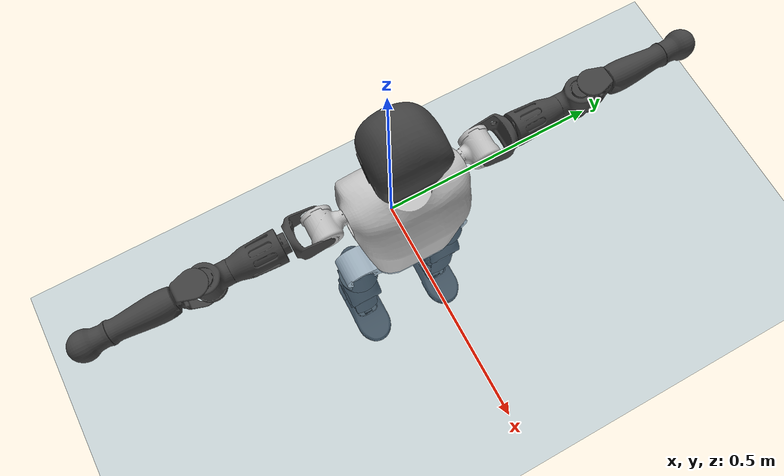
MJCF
<mujoco model="T1">
  <compiler angle="radian" assetdir="assets" balanceinertia="true" inertiafromgeom="false"/>

  <option timestep="0.005" density="1.2" viscosity="2e-05"/>

  <size nkey="1"/>

  <visual>
    <quality shadowsize="8192"/>
    <map shadowclip="0.5"/>
  </visual>

  <default>
    <default class="/">
      <joint armature="0.01" damping="0.01" frictionloss="0.1"/>
      <geom contype="0" conaffinity="0" group="1" solref="-1000 -80"/>
      <site size="0.01 0.005 0.005" group="5"/>
      <general forcelimited="true" biastype="affine" gainprm="25" biasprm="0 -25 -0.6"/>
      <default class="t1">
        <geom rgba="0.25 0.25 0.25 1"/>
        <default class="visual">
          <geom type="mesh" group="2"/>
        </default>
        <default class="collision">
          <geom group="3"/>
        </default>
        <default class="foot">
          <geom size="0.1115 0.05 0.015" type="box" condim="6" group="4" priority="1" solimp="0.015 1 0.015"/>
        </default>
        <default class="reward_collision_sphere">
          <geom group="5" rgba="1 0 0 1"/>
        </default>
      </default>
    </default>
  </default>

  <asset>
    <texture type="skybox" colorspace="auto" name="//unnamed_texture_0" builtin="gradient" rgb1="0.95 0.95 0.95" rgb2="0.95 0.95 0.95" width="100" height="600"/>
    <texture type="2d" colorspace="auto" name="texplane" builtin="checker" rgb1="0.345 0.575 0.748" rgb2="0.345 0.575 0.748" markrgb="1 1 1" width="512" height="512"/>
    <material name="MatPlane" class="/" texture="texplane" texuniform="true" texrepeat="2 2" specular="0.9"/>
    <mesh name="Trunk" class="/" file="Trunk.stl"/>
    <mesh name="H1" class="/" file="H1.stl"/>
    <mesh name="H2" class="/" file="H2.stl"/>
    <mesh name="AL1" class="/" file="AL1.stl"/>
    <mesh name="AL2" class="/" file="AL2.stl"/>
    <mesh name="AL3" class="/" file="AL3.stl"/>
    <mesh name="left_hand_link" class="/" file="left_hand_link.stl"/>
    <mesh name="AR1" class="/" file="AR1.stl"/>
    <mesh name="AR2" class="/" file="AR2.stl"/>
    <mesh name="AR3" class="/" file="AR3.stl"/>
    <mesh name="right_hand_link" class="/" file="right_hand_link.stl"/>
    <mesh name="Waist" class="/" file="Waist.stl"/>
    <mesh name="Hip_Pitch_Left" class="/" file="Hip_Pitch_Left.stl"/>
    <mesh name="Hip_Roll_Left" class="/" file="Hip_Roll_Left.stl"/>
    <mesh name="Hip_Yaw_Left" class="/" file="Hip_Yaw_Left.stl"/>
    <mesh name="Shank_Left" class="/" file="Shank_Left.stl"/>
    <mesh name="Ankle_Cross_Left" class="/" file="Ankle_Cross_Left.stl"/>
    <mesh name="left_foot_link" class="/" file="left_foot_link.stl"/>
    <mesh name="Hip_Pitch_Right" class="/" file="Hip_Pitch_Right.stl"/>
    <mesh name="Hip_Roll_Right" class="/" file="Hip_Roll_Right.stl"/>
    <mesh name="Hip_Yaw_Right" class="/" file="Hip_Yaw_Right.stl"/>
    <mesh name="Shank_Right" class="/" file="Shank_Right.stl"/>
    <mesh name="Ankle_Cross_Right" class="/" file="Ankle_Cross_Right.stl"/>
    <mesh name="right_foot_link" class="/" file="right_foot_link.stl"/>
  </asset>

  <worldbody>
    <geom name="floor" class="/" size="100 100 0.125" type="plane" group="0" material="MatPlane"/>
    <light name="toplight_shadow" class="/" pos="0 0 5" dir="0.0990148 0.0990148 -0.990148" type="directional" ambient="0.04 0.04 0.04" diffuse="0.55 0.55 0.55" specular="0.12 0.12 0.12"/>
    <light name="toplight_fill" class="/" pos="0 0 5" dir="0.0990148 0.0990148 -0.990148" type="directional" castshadow="false" ambient="0.04 0.04 0.04" diffuse="0.3 0.3 0.3" specular="0.08 0.08 0.08"/>
    <body name="trunk" childclass="t1" pos="-0.00123321 0.00239723 0.000237588" quat="1 3.07242e-06 1.71267e-05 -7.83546e-05">
      <inertial pos="0.0391588 -0.00233938 0.106744" quat="0.999986 -0.00206782 0.00208239 0.00441663" mass="11.0132" diaginertia="0.0187407 0.146203 0.0590416"/>
      <joint name="//unnamed_joint_0" type="free" armature="0" damping="0" frictionloss="0"/>
      <geom name="//unnamed_geom_1" class="visual" rgba="0.76 0.76 0.76 1" mesh="Trunk"/>
      <geom name="//unnamed_geom_2" class="collision" size="0.0720029 0.0960039 0.144006" pos="0.043601 0 0.120779" type="box"/>
      <geom name="//unnamed_geom_3" class="reward_collision_sphere" size="0.110404" pos="0.043601 0 0.100649"/>
      <geom name="//unnamed_geom_4" class="reward_collision_sphere" size="0.0144006" pos="0.043601 0.0974901 0"/>
      <geom name="//unnamed_geom_5" class="reward_collision_sphere" size="0.0144006" pos="0.043601 -0.0974901 0"/>
      <geom name="//unnamed_geom_6" class="reward_collision_sphere" size="0.0144006" pos="0.043601 0.122723 0.181168"/>
      <geom name="//unnamed_geom_7" class="reward_collision_sphere" size="0.0144006" pos="0.043601 -0.122723 0.181168"/>
      <site name="imu" pos="0.00317222 0.018581 0.00504675" size="0.00960039"/>
      <camera name="track" pos="0 -2.29388 0" quat="0.707107 0.707107 0 0" mode="trackcom"/>
      <camera name="ego_camera" pos="0.0886555 0 0.422726" quat="-0.5 -0.5 0.5 0.5"/>
      <body name="H1" pos="0.0430584 -0.00293058 0.241868" quat="1 -5.03016e-05 -0.00011664 -3.65329e-05">
        <inertial pos="-0.000434375 -0.000943387 0.057486" quat="0.747208 0.000532652 -0.00399233 0.664578" mass="0.396415" diaginertia="5.1942e-05 0.000449639 0.000159858"/>
        <joint name="AAHead_yaw" pos="0 0 0" axis="0.000333982 0.0191672 0.999816" range="-1.55375 1.62149" armature="0.00956331" damping="0.0137088" frictionloss="0.102377"/>
        <geom name="//unnamed_geom_8" class="visual" mesh="H1"/>
        <body name="H2" pos="-0.00324351 -0.00273957 0.0599809" quat="0.999999 -0.000767683 0.000122373 0.000795075">
          <inertial pos="0.00634033 0.00622717 0.0999463" quat="0.988209 0.111828 -0.07907 -0.0684563" mass="0.574609" diaginertia="0.000430137 0.0042087 0.00182594"/>
          <joint name="Head_pitch" pos="0 0 0" axis="0.0101963 -0.999941 0.00375016" range="-1.27146 0.361214" armature="0.0107512" damping="0" frictionloss="0.0887429"/>
          <geom name="//unnamed_geom_9" class="visual" mesh="H2"/>
          <geom name="//unnamed_geom_10" class="collision" size="0.0768031" pos="0.00726684 0 0.110714"/>
          <geom name="//unnamed_geom_11" class="reward_collision_sphere" size="0.0864035" pos="0.0145337 0 0.100649"/>
        </body>
      </body>
      <body name="AL1" pos="0.0424347 0.122323 0.223079" quat="0.999999 -0.001054 -8.7067e-05 6.62436e-05">
        <inertial pos="0.00143735 0.0534829 0.00491513" quat="0.517111 0.490966 -0.48855 0.50286" mass="0.428949" diaginertia="0.000252251 0.00230328 0.000269303"/>
        <joint name="Left_Shoulder_Pitch" pos="0 0 0" axis="-0.0162398 0.999868 0.00107873" stiffness="0.00355198" range="-3.3101 1.19698" armature="0.00842393" damping="0" frictionloss="0.107043"/>
        <geom name="//unnamed_geom_12" class="visual" rgba="0.76 0.76 0.76 1" mesh="AL1"/>
        <body name="AL2" pos="7.86618e-05 0.0561619 0.00265075" quat="0.999994 -0.000191045 -0.00251923 0.0021831">
          <inertial pos="0.0048449 0.0495303 -0.000755449" quat="0.487994 0.511725 -0.487782 0.511926" mass="0.144966" diaginertia="8.03245e-05 0.000681428 0.00018637"/>
          <joint name="Left_Shoulder_Roll" pos="0 0 0" axis="-0.999557 0.0150751 0.0256738" stiffness="0.0271455" range="-1.65498 1.70046" armature="0.00894183" damping="0.0343028" frictionloss="0.0775976"/>
          <geom name="//unnamed_geom_13" class="visual" mesh="AL2"/>
          <body name="AL3" pos="-0.000739987 0.0637368 -0.00193412" quat="0.999997 8.9723e-05 -0.00197392 -0.00108723">
            <inertial pos="-0.000705792 0.100772 -0.00195443" quat="0.706453 0.70776 -5.58734e-05 0.000128107" mass="0.827638" diaginertia="0.00260646 0.0242827 0.000681971"/>
            <joint name="Left_Elbow_Pitch" pos="0 0 0" axis="0.0109211 -0.999925 -0.0054621" stiffness="0.0126694" range="-2.39295 2.3727" armature="0.00740817" damping="0.0255945" frictionloss="0.086987"/>
            <geom name="//unnamed_geom_14" class="visual" mesh="AL3"/>
            <geom name="//unnamed_geom_15" class="collision" size="0.0288012 0.0720029" pos="0 0.0573471 0" quat="0.707105 0.707108 0 0" type="cylinder"/>
            <geom name="//unnamed_geom_16" class="reward_collision_sphere" size="0.0345614"/>
            <body name="left_hand_link" pos="0.000768935 0.170056 0.00489998" quat="1 0.000261706 -0.000410383 -0.000156416">
              <inertial pos="-9.99506e-05 0.125601 0.00286864" quat="0.702036 0.712097 0.00562261 -0.00565795" mass="0.290897" diaginertia="0.00167485 0.0157095 0.000229491"/>
              <joint name="Left_Elbow_Yaw" pos="0 0 0" axis="0.000994722 9.63546e-05 1" range="-2.44681 0.00955883" armature="0.00856703" damping="0.0151447" frictionloss="0.0952166"/>
              <geom name="//unnamed_geom_17" class="visual" mesh="left_hand_link"/>
              <geom name="//unnamed_geom_18" class="collision" size="0.0288012 0.0840034" pos="0 0.149102 0" quat="0.707105 0.707108 0 0" type="cylinder"/>
              <geom name="//unnamed_geom_19" class="reward_collision_sphere" size="0.0480019"/>
              <geom name="//unnamed_geom_20" class="reward_collision_sphere" size="0.0336013" pos="0 0.126164 0"/>
              <geom name="//unnamed_geom_21" class="reward_collision_sphere" size="0.0336013" pos="0 0.246593 0"/>
            </body>
          </body>
        </body>
      </body>
      <body name="AR1" pos="0.0423751 -0.119416 0.219497" quat="1 0.000261927 0.000456913 -0.000112598">
        <inertial pos="-1.19678e-05 -0.0477338 -0.00417641" quat="0.502471 0.498663 -0.501488 0.497362" mass="0.468375" diaginertia="0.000292832 0.00256771 0.000304031"/>
        <joint name="Right_Shoulder_Pitch" pos="0 0 0" axis="0.00243404 -0.999979 0.00592454" stiffness="0.00820304" range="-1.26709 3.31578" armature="0.00982159" damping="0.0162188" frictionloss="0.107501"/>
        <geom name="//unnamed_geom_22" class="visual" rgba="0.76 0.76 0.76 1" mesh="AR1"/>
        <body name="AR2" pos="-0.0031759 -0.056507 0.00254399" quat="1 0.000374561 -9.06736e-05 0.000424004">
          <inertial pos="0.00278415 -0.0438438 0.00486345" quat="0.511784 0.487781 -0.511895 0.487965" mass="0.146006" diaginertia="8.46087e-05 0.000744907 0.000194734"/>
          <joint name="Right_Shoulder_Roll" pos="0 0 0" axis="-0.999908 0.0102481 0.00893079" range="-1.77813 1.49885" armature="0.0091961" damping="0.0216491" frictionloss="0.0926164"/>
          <geom name="//unnamed_geom_23" class="visual" mesh="AR2"/>
          <body name="AR3" pos="-0.0017256 -0.0711957 0.000105241" quat="0.999999 0.000499033 0.000968134 5.64439e-05">
            <inertial pos="0.00154084 -0.0980232 -0.00214286" quat="0.708296 0.70591 0.00281472 2.61377e-05" mass="0.941415" diaginertia="0.00268755 0.0254895 0.000656049"/>
            <joint name="Right_Elbow_Pitch" pos="0 0 0" axis="0.00348335 0.999968 0.00715943" stiffness="0.00216714" range="-2.25491 2.2821" armature="0.0074882" damping="0.00640771" frictionloss="0.115327"/>
            <geom name="//unnamed_geom_24" class="visual" mesh="AR3"/>
            <geom name="//unnamed_geom_25" class="collision" size="0.0288012 0.0720029" pos="0 -0.0573471 0" quat="0.707105 0.707108 0 0" type="cylinder"/>
            <geom name="//unnamed_geom_26" class="reward_collision_sphere" size="0.0345614"/>
            <body name="right_hand_link" pos="-2.73194e-07 -0.166088 -0.00306425" quat="1 -9.88525e-05 9.83991e-05 -9.50072e-05">
              <inertial pos="-0.00192583 -0.127255 0.00621535" quat="0.692394 0.72131 -0.00958964 0.0145119" mass="0.263193" diaginertia="0.00171973 0.0161282 0.000219126"/>
              <joint name="Right_Elbow_Yaw" pos="0 0 0" axis="-0.00223634 0.0012444 0.999997" stiffness="0.0201217" range="0.0833623 2.33452" armature="0.00861993" damping="0" frictionloss="0.106376"/>
              <geom name="//unnamed_geom_27" class="visual" mesh="right_hand_link"/>
              <geom name="//unnamed_geom_28" class="collision" size="0.0288012 0.0840034" pos="0 -0.149102 0" quat="0.707105 0.707108 0 0" type="cylinder"/>
              <geom name="//unnamed_geom_29" class="reward_collision_sphere" size="0.0480019"/>
              <geom name="//unnamed_geom_30" class="reward_collision_sphere" size="0.0336013" pos="0 -0.126164 0"/>
              <geom name="//unnamed_geom_31" class="reward_collision_sphere" size="0.0336013" pos="0 -0.246593 0"/>
            </body>
          </body>
        </body>
      </body>
      <body name="Waist" pos="0.0462585 0.000594414 -0.113608" quat="1 -0.000435476 0.000280986 0.000289377">
        <inertial pos="0.00512073 -0.000135072 0.00777369" quat="0.983847 -0.000405001 -0.178994 0.0025391" mass="2.3099" diaginertia="0.00112517 0.0103002 0.0049598"/>
        <joint name="Waist" pos="0 0 0" axis="-0.0166045 0.00360498 0.999856" stiffness="0.0326549" range="-1.57568 1.53525" armature="0.010225" damping="0" frictionloss="0.110238"/>
        <geom name="//unnamed_geom_32" class="visual" mesh="Waist"/>
        <body name="Hip_Pitch_Left" pos="-0.00295191 0.117606 -0.00166576" quat="1 -0.000247035 -0.000761607 0.000447519">
          <inertial pos="-0.00449525 -0.00775419 -0.0145771" quat="0.969911 0.24177 0.0283347 -0.00416311" mass="0.898761" diaginertia="0.000375733 0.00292229 0.00132883"/>
          <joint name="Left_Hip_Pitch" pos="0 0 0" axis="0.00115661 0.999979 0.00630198" range="-1.78395 1.49126" armature="0.00859384" damping="0.0219545" frictionloss="0.0842886"/>
          <geom name="//unnamed_geom_33" class="visual" rgba="0.76 0.76 0.76 1" mesh="Hip_Pitch_Left"/>
          <body name="Hip_Roll_Left" pos="-0.00402098 0.0023767 -0.0242344" quat="0.999999 0.00109241 0.000523142 0.00019923">
            <inertial pos="0.00170954 -0.0026064 -0.054417" quat="0.705278 0.000563543 -0.00621341 0.708904" mass="0.37764" diaginertia="0.000356858 0.0033461 0.000577083"/>
            <joint name="Left_Hip_Roll" pos="0 0 0" axis="-0.999987 0.00075973 0.00504384" range="-1.57433 0.218973" armature="0.010186" damping="0.0178224" frictionloss="0.102677"/>
            <geom name="//unnamed_geom_34" class="visual" mesh="Hip_Roll_Left"/>
            <geom name="//unnamed_geom_35" class="reward_collision_sphere" size="0.0528021"/>
            <body name="Hip_Yaw_Left" pos="-0.000840217 -0.00213225 -0.0846362" quat="1 -0.000208825 -5.88061e-05 2.32282e-05">
              <inertial pos="-0.0053868 -0.000256447 -0.0920806" quat="0.68271 -0.022909 -0.0403413 0.729215" mass="1.95931" diaginertia="0.00521608 0.0513935 0.0026066"/>
              <joint name="Left_Hip_Yaw" pos="0 0 0" axis="0.0136409 0.0155761 -0.999786" range="-0.99745 1.04688" armature="0.0086264" damping="0.00679942" frictionloss="0.0974575"/>
              <geom name="//unnamed_geom_36" class="visual" mesh="Hip_Yaw_Left"/>
              <geom name="//unnamed_geom_37" class="collision" size="0.0480019 0.0768031" type="cylinder"/>
              <body name="Shank_Left" pos="-0.0115547 -0.00386769 -0.131773" quat="0.999999 0.000353027 0.00102713 0.000528623">
                <inertial pos="-0.00174952 0.00550132 -0.124749" quat="0.997827 0.0117171 -0.0206894 0.0614489" mass="1.50686" diaginertia="0.00640771 0.0686038 0.00175401"/>
                <joint name="Left_Knee_Pitch" pos="0 0 0" axis="-0.000977551 0.999999 0.000532655" range="0.00453367 2.33616" armature="0.0105911" damping="0.00973588" frictionloss="0.0644035"/>
                <geom name="//unnamed_geom_38" class="visual" mesh="Shank_Left"/>
                <geom name="//unnamed_geom_39" class="collision" size="0.0480019 0.0720029" pos="0 0 -0.120779" type="cylinder"/>
                <geom name="//unnamed_geom_40" class="reward_collision_sphere" size="0.0624025"/>
                <body name="Ankle_Cross_Left" pos="0.00207573 0.00244015 -0.281086" quat="1 0.000105359 -5.98401e-05 8.01583e-05">
                  <inertial pos="-0.00392928 -0.00135767 -0.00821415" quat="0.434961 0.551587 0.559491 0.43992" mass="0.0707002" diaginertia="6.16417e-06 5.8691e-05 1.22789e-05"/>
                  <joint name="Left_Ankle_Pitch" pos="0 0 0" axis="0.0245289 0.999645 -0.0103632" stiffness="0.0255001" range="-0.903686 0.301631" armature="0.0098507" damping="0.00898548" frictionloss="0.0926573"/>
                  <geom name="//unnamed_geom_41" class="visual" mesh="Ankle_Cross_Left"/>
                  <body name="left_foot_link" pos="-0.00242563 8.01729e-06 -0.0129975" quat="0.999996 0.000433432 -0.00224897 0.00145012">
                    <inertial pos="-0.00449836 0.000382812 -0.0104753" quat="0.00965847 0.626572 -0.00383801 0.779295" mass="0.597417" diaginertia="0.000547455 0.00475859 0.00233905"/>
                    <joint name="Left_Ankle_Roll" pos="0 0 0" axis="-0.999871 0.00987467 0.0126719" range="-0.4279 0.437621" armature="0.00941393" damping="0.0134787" frictionloss="0.10334"/>
                    <geom name="//unnamed_geom_42" class="visual" mesh="left_foot_link"/>
                    <geom name="left_foot" class="foot" size="0.0967592 0.0459678 0.017847" pos="0.00726684 0 -0.0150973"/>
                    <geom name="//unnamed_geom_44" class="reward_collision_sphere" size="0.049922" pos="0.00726684 0 -0.0150973"/>
                    <geom name="//unnamed_geom_45" class="reward_collision_sphere" size="0.0288012" pos="0.069035 -0.0263797 -0.0150973"/>
                    <geom name="//unnamed_geom_46" class="reward_collision_sphere" size="0.0288012" pos="-0.0508679 -0.0263797 -0.0150973"/>
                    <site name="left_foot" class="foot" pos="0.00726684 0 -0.0150973" size="0.00960039"/>
                  </body>
                </body>
              </body>
            </body>
          </body>
        </body>
        <body name="Hip_Pitch_Right" pos="0.00205567 -0.11932 -0.00171769" quat="1 -2.03107e-05 0.00045217 -0.000167095">
          <inertial pos="0.000488888 0.00652337 -0.020697" quat="0.972907 -0.2307 0.0110334 -0.0103921" mass="0.872741" diaginertia="0.000371671 0.00286825 0.00123634"/>
          <joint name="Right_Hip_Pitch" pos="0 0 0" axis="0.0108971 -0.999893 -0.00980052" stiffness="0.00157456" range="-1.56232 1.75595" armature="0.00874322" damping="0.0134464" frictionloss="0.0886717"/>
          <geom name="//unnamed_geom_47" class="visual" rgba="0.76 0.76 0.76 1" mesh="Hip_Pitch_Right"/>
          <body name="Hip_Roll_Right" pos="-0.00334199 -0.0023678 -0.0207304" quat="1 -7.66133e-06 3.25762e-06 1.01253e-05">
            <inertial pos="0.00423694 -0.000321554 -0.051835" quat="0.708179 -0.00638221 -0.00712917 0.705968" mass="0.32241" diaginertia="0.000357529 0.0029713 0.000516565"/>
            <joint name="Right_Hip_Roll" pos="0 0 0" axis="-0.999994 0.00306812 -0.00149264" stiffness="0.000751541" range="-0.195197 1.51585" armature="0.00972549" damping="0.00871879" frictionloss="0.0944008"/>
            <geom name="//unnamed_geom_48" class="visual" mesh="Hip_Roll_Right"/>
            <geom name="//unnamed_geom_49" class="reward_collision_sphere" size="0.0528021"/>
            <body name="Hip_Yaw_Right" pos="0.000407169 -0.00244562 -0.0813424" quat="1 -0.000537962 0.000385624 -0.000451108">
              <inertial pos="-0.00475748 0.00334766 -0.0947762" quat="0.715656 -0.0322718 -0.0214779 0.697377" mass="1.80347" diaginertia="0.00509507 0.0463718 0.00264243"/>
              <joint name="Right_Hip_Yaw" pos="0 0 0" axis="0.00171916 0.000999363 -0.999998" range="-1.06525 0.996824" armature="0.0120972" damping="0.00418885" frictionloss="0.084212"/>
              <geom name="//unnamed_geom_50" class="visual" mesh="Hip_Yaw_Right"/>
              <geom name="//unnamed_geom_51" class="collision" size="0.0480019 0.0768031" type="cylinder"/>
              <body name="Shank_Right" pos="-0.0145551 -0.00238232 -0.136166" quat="1 0.000218328 -0.000247079 8.84605e-05">
                <inertial pos="-0.00974119 -0.00659783 -0.121814" quat="0.999072 -0.00749475 -0.0283331 -0.0315612" mass="1.48067" diaginertia="0.00610805 0.0634627 0.00189437"/>
                <joint name="Right_Knee_Pitch" pos="0 0 0" axis="0.0242 -0.999686 0.00656321" range="-2.34291 -0.00790928" armature="0.0106363" damping="0.00930606" frictionloss="0.0992583"/>
                <geom name="//unnamed_geom_52" class="visual" mesh="Shank_Right"/>
                <geom name="//unnamed_geom_53" class="collision" size="0.0480019 0.0720029" pos="0 0 -0.120779" type="cylinder"/>
                <geom name="//unnamed_geom_54" class="reward_collision_sphere" size="0.0624025"/>
                <body name="Ankle_Cross_Right" pos="-4.30934e-05 0.00173955 -0.281403" quat="0.999999 -9.65022e-05 -0.000649198 -0.000887315">
                  <inertial pos="-0.00106652 -5.02415e-06 -0.00732961" quat="0.441537 0.552051 0.550775 0.44377" mass="0.0663896" diaginertia="5.76549e-06 5.08528e-05 1.17669e-05"/>
                  <joint name="Right_Ankle_Pitch" pos="0 0 0" axis="0.0182569 -0.999491 -0.0261656" range="-0.385894 0.891451" armature="0.0106851" damping="0.0132516" frictionloss="0.105507"/>
                  <geom name="//unnamed_geom_55" class="visual" mesh="Ankle_Cross_Right"/>
                  <body name="right_foot_link" pos="-0.00137694 0.00235937 -0.0141779" quat="1 1.83194e-05 -0.000249627 0.000509719">
                    <inertial pos="-0.00537617 -0.000114216 -0.00994796" quat="0.00607876 0.622632 -0.00747001 0.782455" mass="0.621785" diaginertia="0.000505632 0.00465033 0.00224917"/>
                    <joint name="Right_Ankle_Roll" pos="0 0 0" axis="-0.999915 0.00792183 0.0103978" range="-0.434401 0.409408" armature="0.0103697" damping="0.00593137" frictionloss="0.117321"/>
                    <geom name="//unnamed_geom_56" class="visual" mesh="right_foot_link"/>
                    <geom name="right_foot" class="foot" size="0.0996164 0.0443028 0.0147493" pos="0.00726684 0 -0.0150973"/>
                    <geom name="//unnamed_geom_58" class="reward_collision_sphere" size="0.0384015"/>
                    <geom name="//unnamed_geom_59" class="reward_collision_sphere" size="0.0288012" pos="0.00726684 0 -0.0150973"/>
                    <geom name="//unnamed_geom_60" class="reward_collision_sphere" size="0.0288012" pos="0.069035 0.0263797 -0.0150973"/>
                    <geom name="//unnamed_geom_61" class="reward_collision_sphere" size="0.0288012" pos="-0.0508679 0.0263797 -0.0150973"/>
                    <site name="right_foot" class="foot" pos="0.00726684 0 -0.0150973" size="0.00960039"/>
                  </body>
                </body>
              </body>
            </body>
          </body>
        </body>
      </body>
    </body>
  </worldbody>

  <contact>
    <pair class="/" geom1="floor" geom2="left_foot" name="//unnamed_contact_0"/>
    <pair class="/" geom1="floor" geom2="right_foot" name="//unnamed_contact_1"/>
  </contact>

  <actuator>
    <general name="AAHead_yaw" class="/" joint="AAHead_yaw" forcerange="-7.62497 7.62497" gainprm="22.5146" biasprm="0 -22.5146 -0.613748"/>
    <general name="Head_pitch" class="/" joint="Head_pitch" forcerange="-7.11399 7.11399" gainprm="22.5146" biasprm="0 -22.5146 -0.613748"/>
    <general name="Left_Shoulder_Pitch" class="/" joint="Left_Shoulder_Pitch" forcerange="-17.4388 17.4388" gainprm="22.5146" biasprm="0 -22.5146 -0.613748"/>
    <general name="Left_Shoulder_Roll" class="/" joint="Left_Shoulder_Roll" forcerange="-17.9447 17.9447" gainprm="22.5146" biasprm="0 -22.5146 -0.613748"/>
    <general name="Left_Elbow_Pitch" class="/" joint="Left_Elbow_Pitch" forcerange="-15.9144 15.9144" gainprm="22.5146" biasprm="0 -22.5146 -0.613748"/>
    <general name="Left_Elbow_Yaw" class="/" joint="Left_Elbow_Yaw" forcerange="-13.7323 13.7323" gainprm="22.5146" biasprm="0 -22.5146 -0.613748"/>
    <general name="Right_Shoulder_Pitch" class="/" joint="Right_Shoulder_Pitch" forcerange="-17.4484 17.4484" gainprm="22.5146" biasprm="0 -22.5146 -0.613748"/>
    <general name="Right_Shoulder_Roll" class="/" joint="Right_Shoulder_Roll" forcerange="-15.8673 15.8673" gainprm="22.5146" biasprm="0 -22.5146 -0.613748"/>
    <general name="Right_Elbow_Pitch" class="/" joint="Right_Elbow_Pitch" forcerange="-17.0004 17.0004" gainprm="22.5146" biasprm="0 -22.5146 -0.613748"/>
    <general name="Right_Elbow_Yaw" class="/" joint="Right_Elbow_Yaw" forcerange="-18.3758 18.3758" gainprm="22.5146" biasprm="0 -22.5146 -0.613748"/>
    <general name="Waist" class="/" joint="Waist" forcerange="-28.9039 28.9039" gainprm="22.5146" biasprm="0 -22.5146 -0.613748"/>
    <general name="Left_Hip_Pitch" class="/" joint="Left_Hip_Pitch" forcerange="-42.8441 42.8441" gainprm="22.5146" biasprm="0 -22.5146 -0.613748"/>
    <general name="Left_Hip_Roll" class="/" joint="Left_Hip_Roll" forcerange="-26.3243 26.3243" gainprm="22.5146" biasprm="0 -22.5146 -0.613748"/>
    <general name="Left_Hip_Yaw" class="/" joint="Left_Hip_Yaw" forcerange="-30.9319 30.9319" gainprm="22.5146" biasprm="0 -22.5146 -0.613748"/>
    <general name="Left_Knee_Pitch" class="/" joint="Left_Knee_Pitch" forcerange="-56.4883 56.4883" gainprm="22.5146" biasprm="0 -22.5146 -0.613748"/>
    <general name="Left_Ankle_Pitch" class="/" joint="Left_Ankle_Pitch" forcerange="-20.8183 20.8183" gainprm="22.5146" biasprm="0 -22.5146 -0.613748"/>
    <general name="Left_Ankle_Roll" class="/" joint="Left_Ankle_Roll" forcerange="-14.4851 14.4851" gainprm="22.5146" biasprm="0 -22.5146 -0.613748"/>
    <general name="Right_Hip_Pitch" class="/" joint="Right_Hip_Pitch" forcerange="-40.7489 40.7489" gainprm="22.5146" biasprm="0 -22.5146 -0.613748"/>
    <general name="Right_Hip_Roll" class="/" joint="Right_Hip_Roll" forcerange="-28.3943 28.3943" gainprm="22.5146" biasprm="0 -22.5146 -0.613748"/>
    <general name="Right_Hip_Yaw" class="/" joint="Right_Hip_Yaw" forcerange="-30.1004 30.1004" gainprm="22.5146" biasprm="0 -22.5146 -0.613748"/>
    <general name="Right_Knee_Pitch" class="/" joint="Right_Knee_Pitch" forcerange="-56.2698 56.2698" gainprm="22.5146" biasprm="0 -22.5146 -0.613748"/>
    <general name="Right_Ankle_Pitch" class="/" joint="Right_Ankle_Pitch" forcerange="-20.693 20.693" gainprm="22.5146" biasprm="0 -22.5146 -0.613748"/>
    <general name="Right_Ankle_Roll" class="/" joint="Right_Ankle_Roll" forcerange="-14.2341 14.2341" gainprm="22.5146" biasprm="0 -22.5146 -0.613748"/>
  </actuator>

  <sensor>
    <gyro site="imu" name="imu_angular_velocity"/>
    <velocimeter site="imu" name="imu_linear_velocity"/>
    <framelinvel objtype="site" objname="left_foot" name="left_foot_global_linear_velocity"/>
    <framelinvel objtype="site" objname="right_foot" name="right_foot_global_linear_velocity"/>
  </sensor>

  <keyframe>
    <key name="home" qpos="0 0 0.6385 1 0 0 0 0 0 0 1.4 0 -0.4 0 -1.4 0 0.4 0 -0.4 0 0 0.8 -0.4 0 0.4 0 0 -0.8 0.4 0"/>
  </keyframe>
</mujoco>
